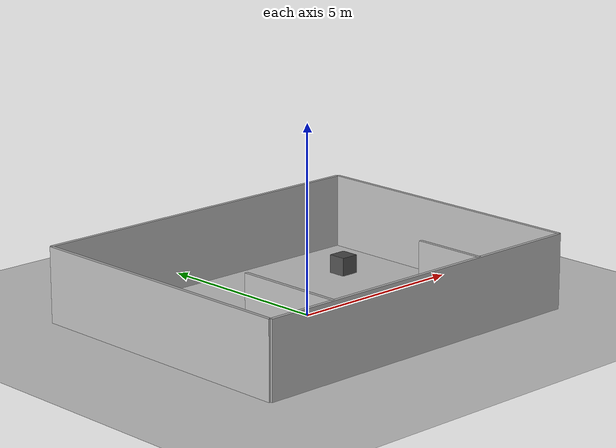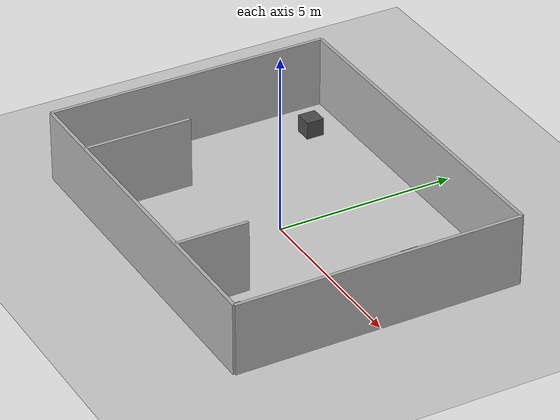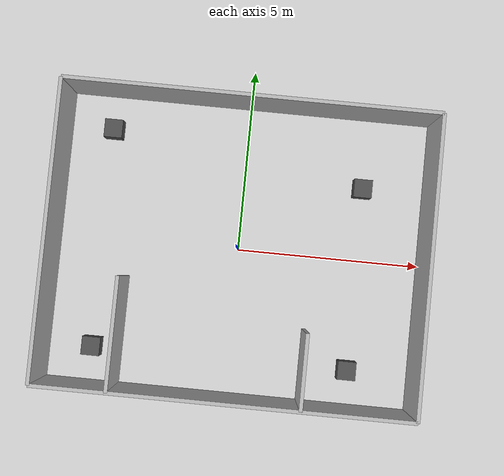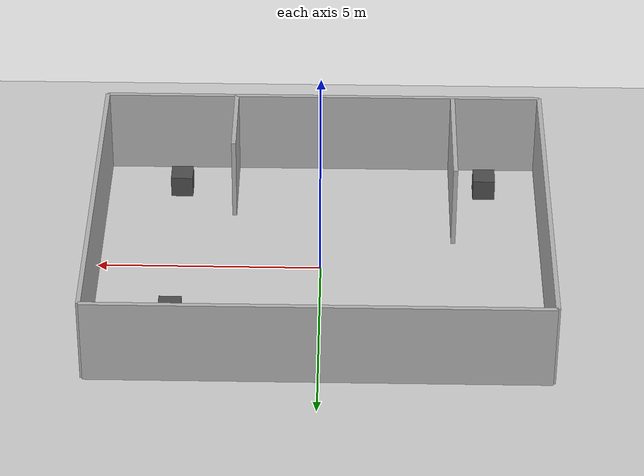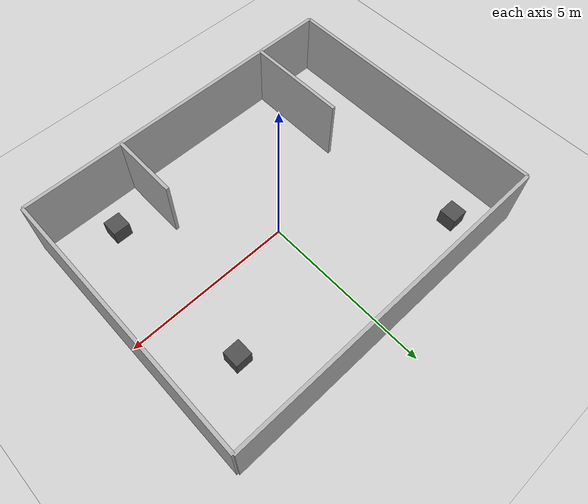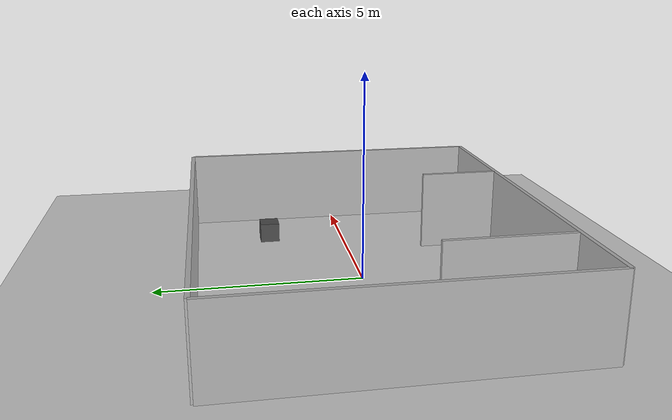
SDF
<?xml version="1.0" ?>
<sdf version="1.8">
  <world name="robot_room">
    <physics name="1ms" type="ignored">
      <max_step_size>0.001</max_step_size>
      <real_time_factor>1.0</real_time_factor>
    </physics>

    <plugin filename="gz-sim-physics-system"
            name="gz::sim::systems::Physics">
    </plugin>
    <plugin filename="gz-sim-user-commands-system"
            name="gz::sim::systems::UserCommands">
    </plugin>
    <plugin filename="gz-sim-scene-broadcaster-system"
            name="gz::sim::systems::SceneBroadcaster">
    </plugin>

    <light type="directional" name="sun">
      <cast_shadows>true</cast_shadows>
      <pose>0 0 10 0 0 0</pose>
      <diffuse>0.8 0.8 0.8 1</diffuse>
      <specular>0.2 0.2 0.2 1</specular>
      <attenuation>
        <range>1000</range>
        <constant>0.9</constant>
        <linear>0.01</linear>
        <quadratic>0.001</quadratic>
      </attenuation>
      <direction>-0.5 0.1 -0.9</direction>
    </light>

    <model name="ground_plane">
      <static>true</static>
      <link name="link">
        <collision name="collision">
          <geometry>
            <plane>
              <normal>0 0 1</normal>
              <size>100 100</size>
            </plane>
          </geometry>
        </collision>
        <visual name="visual">
          <geometry>
            <plane>
              <normal>0 0 1</normal>
              <size>100 100</size>
            </plane>
          </geometry>
          <material>
            <ambient>0.8 0.8 0.8 1</ambient>
            <diffuse>0.8 0.8 0.8 1</diffuse>
            <specular>0.8 0.8 0.8 1</specular>
          </material>
        </visual>
      </link>
    </model>

    <!-- Outer Walls -->
    <!-- Bottom Wall -->
    <model name="outer_wall_bottom">
      <static>true</static>
      <pose>0 -4.0 1.0 0 0 0</pose>
      <link name="link">
        <collision name="collision">
          <geometry>
            <box>
              <size>10.0 0.1 2.0</size>
            </box>
          </geometry>
        </collision>
        <visual name="visual">
          <geometry>
            <box>
              <size>10.0 0.1 2.0</size>
            </box>
          </geometry>
          <material>
            <ambient>0.7 0.7 0.7 1</ambient>
            <diffuse>0.7 0.7 0.7 1</diffuse>
          </material>
        </visual>
      </link>
    </model>

    <!-- Top Wall -->
    <model name="outer_wall_top">
      <static>true</static>
      <pose>0 4.0 1.0 0 0 0</pose>
      <link name="link">
        <collision name="collision">
          <geometry>
            <box>
              <size>10.0 0.1 2.0</size>
            </box>
          </geometry>
        </collision>
        <visual name="visual">
          <geometry>
            <box>
              <size>10.0 0.1 2.0</size>
            </box>
          </geometry>
          <material>
            <ambient>0.7 0.7 0.7 1</ambient>
            <diffuse>0.7 0.7 0.7 1</diffuse>
          </material>
        </visual>
      </link>
    </model>

    <!-- Left Wall -->
    <model name="outer_wall_left">
      <static>true</static>
      <pose>-5.0 0 1.0 0 0 0</pose>
      <link name="link">
        <collision name="collision">
          <geometry>
            <box>
              <size>0.1 8.0 2.0</size>
            </box>
          </geometry>
        </collision>
        <visual name="visual">
          <geometry>
            <box>
              <size>0.1 8.0 2.0</size>
            </box>
          </geometry>
          <material>
            <ambient>0.7 0.7 0.7 1</ambient>
            <diffuse>0.7 0.7 0.7 1</diffuse>
          </material>
        </visual>
      </link>
    </model>

    <!-- Right Wall -->
    <model name="outer_wall_right">
      <static>true</static>
      <pose>5.0 0 1.0 0 0 0</pose>
      <link name="link">
        <collision name="collision">
          <geometry>
            <box>
              <size>0.1 8.0 2.0</size>
            </box>
          </geometry>
        </collision>
        <visual name="visual">
          <geometry>
            <box>
              <size>0.1 8.0 2.0</size>
            </box>
          </geometry>
          <material>
            <ambient>0.7 0.7 0.7 1</ambient>
            <diffuse>0.7 0.7 0.7 1</diffuse>
          </material>
        </visual>
      </link>
    </model>

    <!-- Inner Walls -->
    <!-- Room 1 - Bottom Left -->
    <model name="wall_room1">
      <static>true</static>
      <pose>-3.0 -2.5 1.0 0 0 0</pose>
      <link name="link">
        <collision name="collision">
          <geometry>
            <box>
              <size>0.1 3.0 2.0</size>
            </box>
          </geometry>
        </collision>
        <visual name="visual">
          <geometry>
            <box>
              <size>0.1 3.0 2.0</size>
            </box>
          </geometry>
          <material>
            <ambient>0.7 0.7 0.7 1</ambient>
            <diffuse>0.7 0.7 0.7 1</diffuse>
          </material>
        </visual>
      </link>
    </model>

    <!-- Room 2 - Bottom Right -->
    <model name="wall_room2">
      <static>true</static>
      <pose>2.0 -3.0 1.0 0 0 0</pose>
      <link name="link">
        <collision name="collision">
          <geometry>
            <box>
              <size>0.1 2.0 2.0</size>
            </box>
          </geometry>
        </collision>
        <visual name="visual">
          <geometry>
            <box>
              <size>0.1 2.0 2.0</size>
            </box>
          </geometry>
          <material>
            <ambient>0.7 0.7 0.7 1</ambient>
            <diffuse>0.7 0.7 0.7 1</diffuse>
          </material>
        </visual>
      </link>
    </model>

    <!-- Room Obstacles -->
    <model name="room1_obstacle">
      <static>true</static>
      <pose>-3.75 -3.0 0.25 0 0 0</pose>
      <link name="link">
        <collision name="collision">
          <geometry>
            <box>
              <size>0.5 0.5 0.5</size>
            </box>
          </geometry>
        </collision>
        <visual name="visual">
          <geometry>
            <box>
              <size>0.5 0.5 0.5</size>
            </box>
          </geometry>
          <material>
            <ambient>0.3 0.3 0.3 1</ambient>
            <diffuse>0.3 0.3 0.3 1</diffuse>
          </material>
        </visual>
      </link>
    </model>

    <!-- Room 2 - Bottom Right -->
    <model name="room2_obstacle">
      <static>true</static>
      <pose>3.25 -3.0 0.25 0 0 0</pose>
      <link name="link">
        <collision name="collision">
          <geometry>
            <box>
              <size>0.5 0.5 0.5</size>
            </box>
          </geometry>
        </collision>
        <visual name="visual">
          <geometry>
            <box>
              <size>0.5 0.5 0.5</size>
            </box>
          </geometry>
          <material>
            <ambient>0.3 0.3 0.3 1</ambient>
            <diffuse>0.3 0.3 0.3 1</diffuse>
          </material>
        </visual>
      </link>
    </model>

    <!-- Room 3 - Top Left -->
    <model name="room3_obstacle">
      <static>true</static>
      <pose>-3.75 3.0 0.25 0 0 0</pose>
      <link name="link">
        <collision name="collision">
          <geometry>
            <box>
              <size>0.5 0.5 0.5</size>
            </box>
          </geometry>
        </collision>
        <visual name="visual">
          <geometry>
            <box>
              <size>0.5 0.5 0.5</size>
            </box>
          </geometry>
          <material>
            <ambient>0.3 0.3 0.3 1</ambient>
            <diffuse>0.3 0.3 0.3 1</diffuse>
          </material>
        </visual>
      </link>
    </model>

    <!-- Room 4 - Top Right -->
    <model name="room4_obstacle">
      <static>true</static>
      <pose>3.25 2.0 0.25 0 0 0</pose>
      <link name="link">
        <collision name="collision">
          <geometry>
            <box>
              <size>0.5 0.5 0.5</size>
            </box>
          </geometry>
        </collision>
        <visual name="visual">
          <geometry>
            <box>
              <size>0.5 0.5 0.5</size>
            </box>
          </geometry>
          <material>
            <ambient>0.3 0.3 0.3 1</ambient>
            <diffuse>0.3 0.3 0.3 1</diffuse>
          </material>
        </visual>
      </link>
    </model>
  </world>
</sdf>
